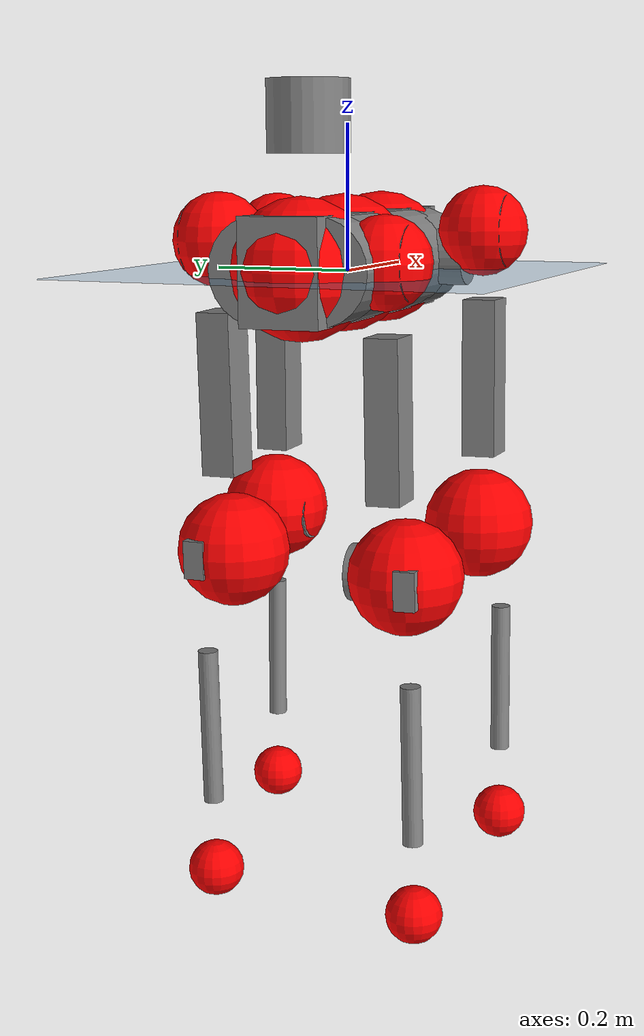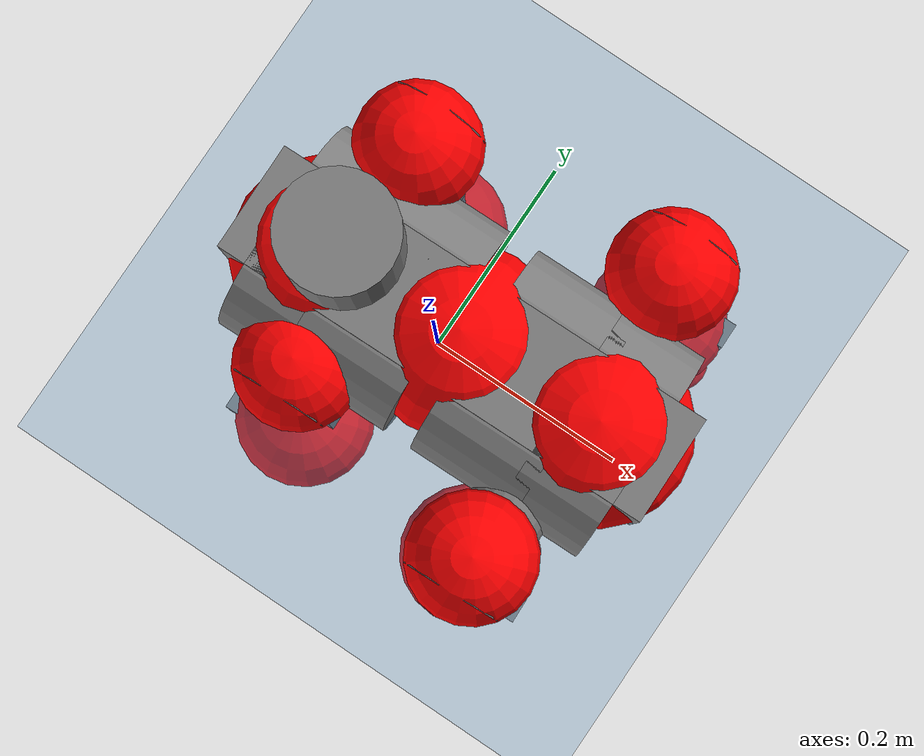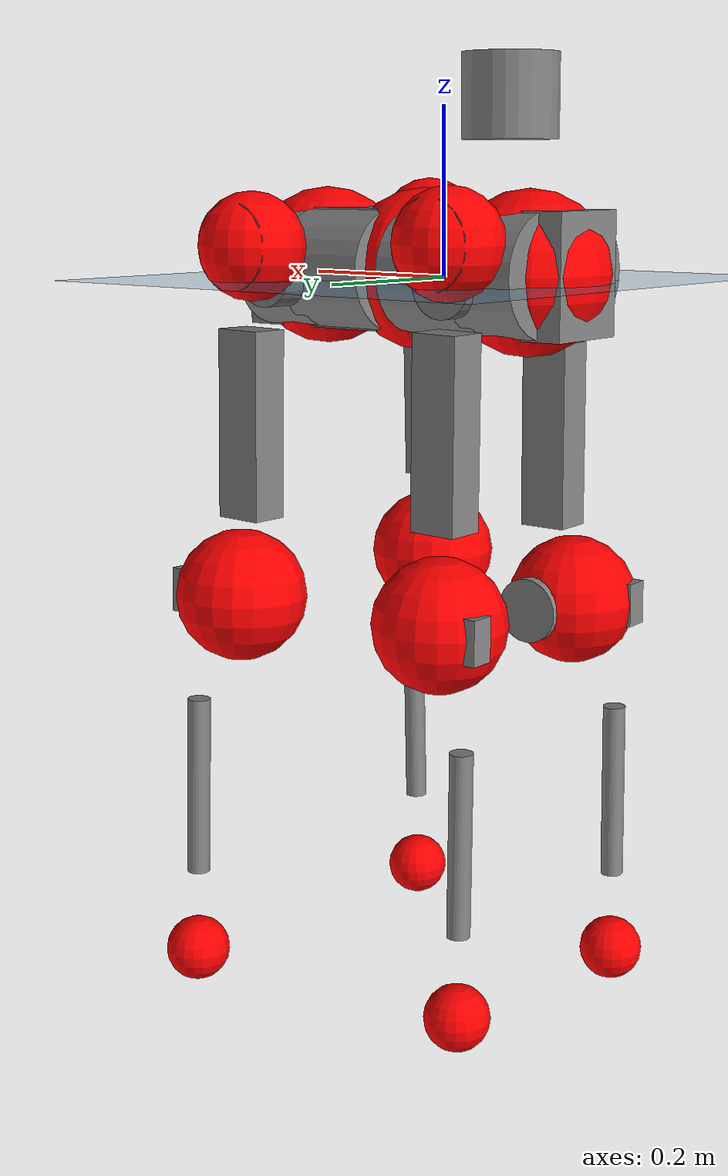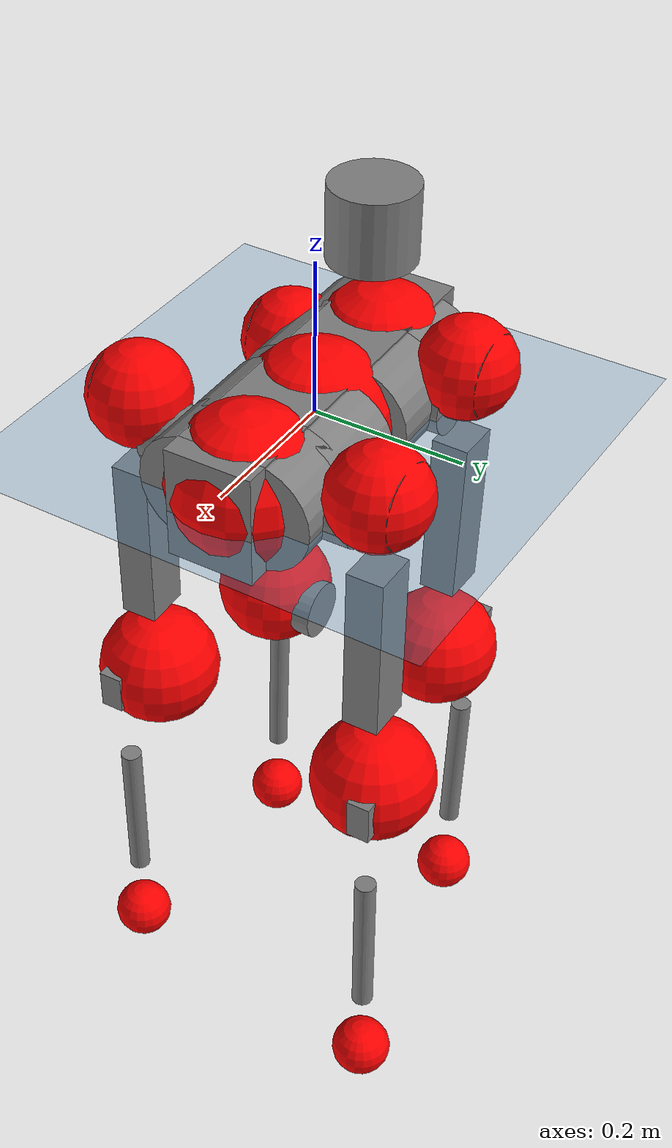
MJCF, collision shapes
<mujoco model="anymal_c">
  <compiler angle="radian" assetdir="assets" balanceinertia="true" inertiafromgeom="false"/>

  <option timestep="0.005" density="1.2" viscosity="2e-05"/>

  <size nkey="1"/>

  <visual>
    <quality shadowsize="8192"/>
    <map shadowclip="0.5"/>
  </visual>

  <default>
    <default class="/">
      <material specular="0" shininess="0.25"/>
      <geom contype="0" conaffinity="0" group="1" solref="-1000 -80"/>
      <site size="0.01 0.005 0.005" group="5"/>
      <general forcelimited="true" forcerange="-80 80" biastype="affine" gainprm="80" biasprm="0 -80 -2"/>
      <default class="anymal_c">
        <joint armature="0.01" damping="0.01" frictionloss="0.1"/>
        <default class="visual">
          <geom type="mesh" group="2"/>
          <default class="visual_zflip"/>
        </default>
        <default class="collision">
          <geom type="cylinder" group="3"/>
          <default class="foot">
            <geom size="0.03 0 0" type="sphere" condim="6" priority="1" friction="0.8 0.02 0.01" solimp="0.015 1 0.03"/>
          </default>
        </default>
      </default>
      <default class="reward_collision_sphere">
        <geom group="5" rgba="1 0 0 1"/>
      </default>
    </default>
  </default>

  <asset>
    <texture type="skybox" colorspace="auto" name="//unnamed_texture_0" builtin="gradient" rgb1="0.95 0.95 0.95" rgb2="0.95 0.95 0.95" width="100" height="600"/>
    <texture type="2d" colorspace="auto" name="texplane" builtin="checker" rgb1="0.345 0.575 0.748" rgb2="0.345 0.575 0.748" markrgb="1 1 1" width="512" height="512"/>
    <texture type="2d" colorspace="linear" name="base" file="base.png"/>
    <texture type="2d" colorspace="linear" name="top_shell" file="top_shell.png"/>
    <texture type="2d" colorspace="linear" name="bottom_shell" file="bottom_shell.png"/>
    <texture type="2d" colorspace="linear" name="remote" file="remote.png"/>
    <texture type="2d" colorspace="linear" name="hatch" file="hatch.png"/>
    <texture type="2d" colorspace="linear" name="handle" file="handle.png"/>
    <texture type="2d" colorspace="linear" name="face" file="face.png"/>
    <texture type="2d" colorspace="linear" name="battery" file="battery.png"/>
    <texture type="2d" colorspace="linear" name="lidar_cage" file="lidar_cage.png"/>
    <texture type="2d" colorspace="linear" name="depth_camera" file="depth_camera.png"/>
    <texture type="2d" colorspace="linear" name="wide_angle_camera" file="wide_angle_camera.png"/>
    <texture type="2d" colorspace="linear" name="lidar" file="lidar.png"/>
    <texture type="2d" colorspace="linear" name="drive" file="drive.png"/>
    <texture type="2d" colorspace="linear" name="hip_l" file="hip_l.png"/>
    <texture type="2d" colorspace="linear" name="shank_l" file="shank_l.png"/>
    <texture type="2d" colorspace="linear" name="foot" file="foot.png"/>
    <texture type="2d" colorspace="linear" name="thigh" file="thigh.png"/>
    <texture type="2d" colorspace="linear" name="shank_r" file="shank_r.png"/>
    <texture type="2d" colorspace="linear" name="hip_r" file="hip_r.png"/>
    <material name="MatPlane" class="/" texture="texplane" texuniform="true" texrepeat="2 2" specular="0.9" shininess="0.5"/>
    <material name="black_plastic" class="/" rgba="0.007 0.007 0.007 1"/>
    <material name="green" class="/" rgba="0.052 0.178 0.033 1"/>
    <material name="red" class="/" rgba="0.178 0.006 0.005 1"/>
    <material name="yellow" class="/" rgba="0.178 0.119 0.006 1"/>
    <material name="lwl" class="/" rgba="0.8 0.8 0.8 1"/>
    <material name="base" class="/" texture="base"/>
    <material name="top_shell" class="/" texture="top_shell"/>
    <material name="bottom_shell" class="/" texture="bottom_shell"/>
    <material name="hip_l" class="/" texture="hip_l"/>
    <material name="thigh" class="/" texture="thigh"/>
    <material name="shank_l" class="/" texture="shank_l"/>
    <material name="foot" class="/" texture="foot"/>
    <material name="hip_r" class="/" texture="hip_r"/>
    <material name="shank" class="/" texture="shank_r"/>
    <material name="hatch" class="/" texture="hatch"/>
    <material name="remote" class="/" texture="remote"/>
    <material name="handle" class="/" texture="handle"/>
    <material name="face" class="/" texture="face"/>
    <material name="depth_camera" class="/" texture="depth_camera"/>
    <material name="wide_angle_camera" class="/" texture="wide_angle_camera"/>
    <material name="battery" class="/" texture="battery"/>
    <material name="lidar_cage" class="/" texture="lidar_cage"/>
    <material name="lidar" class="/" texture="lidar"/>
    <material name="drive" class="/" texture="drive"/>
    <mesh name="base_0" class="/" file="base_0.obj"/>
    <mesh name="base_1" class="/" file="base_1.obj"/>
    <mesh name="base_2" class="/" file="base_2.obj"/>
    <mesh name="base_3" class="/" file="base_3.obj"/>
    <mesh name="base_4" class="/" file="base_4.obj"/>
    <mesh name="base_5" class="/" file="base_5.obj"/>
    <mesh name="top_shell" class="/" file="top_shell.obj"/>
    <mesh name="bottom_shell" class="/" file="bottom_shell.obj"/>
    <mesh name="remote" class="/" file="remote.obj"/>
    <mesh name="handle" class="/" file="handle.obj"/>
    <mesh name="face" class="/" file="face.obj"/>
    <mesh name="wide_angle_camera" class="/" file="wide_angle_camera.obj"/>
    <mesh name="depth_camera" class="/" file="depth_camera.obj"/>
    <mesh name="battery" class="/" file="battery.obj"/>
    <mesh name="lidar_cage" class="/" file="lidar_cage.obj"/>
    <mesh name="lidar" class="/" file="lidar.obj"/>
    <mesh name="drive" class="/" file="drive.obj"/>
    <mesh name="hip_l" class="/" file="hip_l.obj"/>
    <mesh name="thigh" class="/" file="thigh.obj"/>
    <mesh name="shank_l" class="/" file="shank_l.obj"/>
    <mesh name="foot" class="/" file="foot.obj"/>
    <mesh name="hip_r" class="/" file="hip_r.obj"/>
    <mesh name="hatch" class="/" file="hatch.obj"/>
    <mesh name="shank_r" class="/" file="shank_r.obj"/>
  </asset>

  <worldbody>
    <geom name="floor" class="/" size="100 100 0.125" type="plane" group="0" material="MatPlane"/>
    <light name="toplight_shadow" class="/" pos="0 0 5" dir="0.0990148 0.0990148 -0.990148" type="directional" ambient="0.04 0.04 0.04" diffuse="0.55 0.55 0.55" specular="0.12 0.12 0.12"/>
    <light name="toplight_fill" class="/" pos="0 0 5" dir="0.0990148 0.0990148 -0.990148" type="directional" castshadow="false" ambient="0.04 0.04 0.04" diffuse="0.3 0.3 0.3" specular="0.08 0.08 0.08"/>
    <body name="trunk" childclass="anymal_c" pos="0.0178856 0.0136846 0.00976025" quat="0.999971 -0.00206042 -0.000549801 0.00731962">
      <inertial pos="0.0194169 0.00494771 0.0786842" quat="0.479183 0.523217 0.471711 0.523561" mass="9.10854" diaginertia="0.00319543 0.0395815 1.28704"/>
      <joint name="//unnamed_joint_0" type="free" armature="0" damping="0" frictionloss="0"/>
      <geom name="//unnamed_geom_1" class="visual" material="green" mesh="base_0"/>
      <geom name="//unnamed_geom_2" class="visual" material="yellow" mesh="base_1"/>
      <geom name="//unnamed_geom_3" class="visual" material="red" mesh="base_2"/>
      <geom name="//unnamed_geom_4" class="visual" material="black_plastic" mesh="base_3"/>
      <geom name="//unnamed_geom_5" class="visual" material="lwl" mesh="base_4"/>
      <geom name="//unnamed_geom_6" class="visual" material="base" mesh="base_5"/>
      <geom name="trunk_1" class="collision" size="0.231804 0.0559527 0.0719392" type="box"/>
      <geom name="trunk_2" class="collision" size="0.0719392 0.0579511" pos="0.0733059 0.0405228 0" quat="0.707107 0 0.707107 0"/>
      <geom name="trunk_3" class="collision" size="0.0719392 0.0579511" pos="-0.0733059 0.0405228 0" quat="0.707107 0 0.707107 0"/>
      <geom name="trunk_4" class="collision" size="0.0719392 0.0579511" pos="0.0733059 -0.0405228 0" quat="0.707107 0 0.707107 0"/>
      <geom name="trunk_5" class="collision" size="0.0719392 0.0579511" pos="-0.0733059 -0.0405228 0" quat="0.707107 0 0.707107 0"/>
      <geom name="//unnamed_geom_12" class="visual" material="top_shell" mesh="top_shell"/>
      <geom name="//unnamed_geom_13" class="visual" material="bottom_shell" mesh="bottom_shell"/>
      <geom name="//unnamed_geom_14" class="visual" material="remote" mesh="remote"/>
      <geom name="//unnamed_geom_15" class="visual" material="handle" mesh="handle"/>
      <geom name="//unnamed_geom_16" class="visual" pos="0.139703 0 0" quat="1 0 0 0" material="face" mesh="face"/>
      <geom name="trunk_6" class="collision" size="0.0439629 0.0559527 0.0719392" pos="0.15824 0 0" type="box"/>
      <geom name="//unnamed_geom_18" class="collision" size="0.0719392 0.0439629" pos="0.15824 0.0405228 0" quat="0.707107 0 0.707107 0"/>
      <geom name="//unnamed_geom_19" class="collision" size="0.0719392 0.0439629" pos="0.15824 -0.0405228 0" quat="0.707107 0 0.707107 0"/>
      <geom name="//unnamed_geom_20" class="visual" pos="0.155641 0 -0.0519775" quat="0.965926 0 0.258819 0" material="depth_camera" mesh="depth_camera"/>
      <geom name="//unnamed_geom_21" class="visual" pos="0.172901 0 0.0221861" material="wide_angle_camera" mesh="wide_angle_camera"/>
      <geom name="//unnamed_geom_22" class="visual_zflip" pos="-0.139703 0 0" quat="0 0 0 1" material="face" mesh="face"/>
      <geom name="trunk_7" class="collision" size="0.0439629 0.0559527 0.0719392" pos="-0.15824 0 0" quat="0 0 0 1" type="box"/>
      <geom name="//unnamed_geom_24" class="collision" size="0.0719392 0.0439629" pos="-0.15824 -0.0405228 0" quat="0 -0.707107 0 0.707107"/>
      <geom name="//unnamed_geom_25" class="collision" size="0.0719392 0.0439629" pos="-0.15824 0.0405228 0" quat="0 -0.707107 0 0.707107"/>
      <geom name="//unnamed_geom_26" class="visual" pos="-0.155641 0 -0.0519775" quat="0 -0.258819 0 0.965926" material="depth_camera" mesh="depth_camera"/>
      <geom name="//unnamed_geom_27" class="visual_zflip" pos="-0.172901 0 0.0221861" quat="0 0 0 1" material="wide_angle_camera" mesh="wide_angle_camera"/>
      <geom name="//unnamed_geom_28" class="visual" material="battery" mesh="battery"/>
      <geom name="//unnamed_geom_29" class="visual" pos="0 0.0474837 0.0343512" quat="0.683013 -0.183013 0.183013 0.683013" material="depth_camera" mesh="depth_camera"/>
      <geom name="//unnamed_geom_30" class="visual" pos="0 -0.0474837 0.0343512" quat="0.683013 0.183013 0.183013 -0.683013" material="depth_camera" mesh="depth_camera"/>
      <geom name="//unnamed_geom_31" class="visual" pos="-0.122682 0 0.10893" quat="1 0 0 0" material="lidar_cage" mesh="lidar_cage"/>
      <geom name="trunk_8" class="collision" size="0.0559527 0.0479595" pos="-0.122682 0 0.197852"/>
      <geom name="//unnamed_geom_33" class="visual" pos="-0.122682 9.50196e-05 0.210746" quat="0.707107 0 0 -0.707107" material="lidar" mesh="lidar"/>
      <geom name="//unnamed_geom_34" class="visual" pos="0.101078 0.0605261 -1.55793e-08" quat="0.258819 0.965926 0 0" material="drive" mesh="drive"/>
      <geom name="//unnamed_geom_35" class="visual" pos="0.101078 -0.0605261 1.55793e-08" quat="0.258819 -0.965926 0 0" material="drive" mesh="drive"/>
      <geom name="//unnamed_geom_36" class="visual" pos="-0.101078 0.0605261 1.55793e-08" quat="0 0 0.965926 -0.258819" material="drive" mesh="drive"/>
      <geom name="//unnamed_geom_37" class="visual" pos="-0.101078 -0.0605261 -1.55793e-08" quat="0 0 -0.965926 -0.258819" material="drive" mesh="drive"/>
      <geom name="//unnamed_geom_38" class="visual" pos="0.0390965 0 0.108189" quat="1 0 0 0" material="hatch" mesh="hatch"/>
      <geom name="//unnamed_geom_39" class="reward_collision_sphere" size="0.095919"/>
      <geom name="//unnamed_geom_40" class="reward_collision_sphere" size="0.095919" pos="0.151667 0 0"/>
      <geom name="//unnamed_geom_41" class="reward_collision_sphere" size="0.095919" pos="-0.151667 0 0"/>
      <site name="imu" pos="0.0649168 -0.0421352 0.109367" size="0.00799325"/>
      <camera name="track" pos="0 -1.15779 0" quat="0.707107 0.707107 0 0" mode="trackcom"/>
      <camera name="ego_camera" pos="0.151667 0 -0.0592816" quat="-0.5 -0.5 0.5 0.5"/>
      <body name="LF_HIP" pos="0.113604 0.0730108 -0.00984979" quat="0.255282 0.966832 -0.0023144 0.00782462">
        <inertial pos="0.0379192 0.00262766 -0.000701025" quat="-0.1404 0.704551 -0.118637 0.685435" mass="1.21613" diaginertia="2.19338e-05 0.000309874 0.0160084"/>
        <joint name="LF_HAA" pos="0 0 0" axis="0.99949 -0.0102272 0.0302386" stiffness="0.0454173" range="-0.627107 0.811525" armature="0.00215934" damping="0.074039" frictionloss="0.0393358"/>
        <geom name="//unnamed_geom_42" class="visual" pos="0 -0.00091646 0.000150528" quat="0.258819 -0.965926 0 0" material="hip_l" mesh="hip_l"/>
        <geom name="//unnamed_geom_43" class="visual" pos="0.0201886 -0.0279681 -0.0228275" quat="0.183013 -0.683013 0.683013 0.183013" material="drive" mesh="drive"/>
        <geom name="//unnamed_geom_44" class="collision" size="0.0399662 0.0559527" pos="0.0201886 -0.00692349 -0.0102335" quat="-0.353553 -0.612372 0.612372 -0.353553"/>
        <body name="LF_THIGH" pos="0.0194671 -0.0483086 -0.0716355" quat="0.184001 -0.683823 0.681843 0.183357">
          <inertial pos="-0.0074505 -0.00520163 -0.380735" quat="0.993504 0.00657182 -0.0919655 0.0667038" mass="1.66466" diaginertia="0.000135432 0.00168898 0.032415"/>
          <joint name="LF_HFE" pos="0 0 0" axis="0.998553 -0.0535246 -0.00527673" range="-2.83389 2.84774" armature="0.00254461" damping="0.0979551" frictionloss="0.0355564"/>
          <geom name="//unnamed_geom_45" class="visual" pos="-0.00481203 -7.58263e-06 0" quat="0.707107 0 0 -0.707107" material="thigh" mesh="thigh"/>
          <geom name="//unnamed_geom_46" class="collision" size="0.0519561 0.031973" pos="0.0134815 0 0" quat="0.5 0.5 -0.5 -0.5"/>
          <geom name="//unnamed_geom_47" class="collision" size="0.0299747 0.0239797 0.112956" pos="0.0101112 0 -0.209433" quat="0.707107 0 0 -0.707107" type="box"/>
          <geom name="//unnamed_geom_48" class="visual" pos="0.033805 0 -0.422381" quat="1 0 0 0" material="drive" mesh="drive"/>
          <geom name="//unnamed_geom_49" class="collision" size="0.0399662 0.0559527" pos="0.0102123 0 -0.422381" quat="0.707107 0 0.707107 0"/>
          <geom name="//unnamed_geom_50" class="reward_collision_sphere" size="0.063946" pos="0.00842597 0 0"/>
          <body name="LF_SHANK" pos="0.036667 -0.00728456 -0.417635" quat="0.999979 -0.00121441 -0.00631768 -0.0010701">
            <inertial pos="-0.010418 -0.0469044 -0.105195" quat="0.995778 -0.0544925 0.0367939 -0.0640476" mass="0.266543" diaginertia="4.85986e-05 0.000510743 0.00922497"/>
            <joint name="LF_KFE" pos="0 0 0" axis="0.999307 -0.0366918 0.00625744" range="-3.0401 3.45404" armature="0.0132637" damping="0.00354297" frictionloss="0.104054"/>
            <geom name="//unnamed_geom_51" class="visual" pos="-0.0015691 -0.0083665 0" quat="0.707107 0 0 -0.707107" material="shank_l" mesh="shank_l"/>
            <geom name="LF_kfe_act" class="collision" size="0.0479595 0.0159865" pos="0.00674077 0 0" quat="0.5 0.5 -0.5 -0.5"/>
            <geom name="//unnamed_geom_53" class="collision" size="0.0459604 0.0269772 0.0151872" pos="0.00674077 -0.033286 0" quat="0.5 0.5 -0.5 -0.5" type="box"/>
            <geom name="//unnamed_geom_54" class="visual" pos="0.00439873 -0.0536102 -0.500885" quat="0.382683 0 0 -0.92388" material="foot" mesh="foot"/>
            <geom name="LF_calf" class="collision" size="0.0139882 0.112906" pos="0.00439835 -0.050914 -0.250442" quat="0.707107 0 0 -0.707107"/>
            <geom name="LF_foot" class="foot" size="0.0170828" pos="0.00439835 -0.050914 -0.467539" quat="0.707107 0 0 -0.707107"/>
            <geom name="//unnamed_geom_57" class="reward_collision_sphere" size="0.0799325" pos="-0.0168519 0 0"/>
            <geom name="//unnamed_geom_58" class="reward_collision_sphere" size="0.0399662" pos="0.00439835 -0.050914 -0.467539"/>
            <site name="LF_foot" class="foot" pos="0.00439835 -0.050914 -0.467539" quat="0.707107 0 0 -0.707107" size="0.00799325"/>
          </body>
        </body>
      </body>
      <body name="RF_HIP" pos="0.104375 -0.0760293 -0.00230329" quat="0.255017 -0.96693 -0.00173177 0.00319846">
        <inertial pos="0.00420163 0.000723959 -0.0125838" quat="0.150455 0.667162 0.133837 0.717179" mass="0.884857" diaginertia="2.28141e-05 0.00028974 0.0226496"/>
        <joint name="RF_HAA" pos="0 0 0" axis="0.999926 -0.00409606 0.011487" stiffness="0.0355526" range="-0.72978 0.651793" armature="0.0156069" damping="0.0261748" frictionloss="0.00764977"/>
        <geom name="//unnamed_geom_59" class="visual" pos="0 0.000916453 0.000150527" quat="0.258819 0.965926 0 0" material="hip_r" mesh="hip_r"/>
        <geom name="//unnamed_geom_60" class="visual" pos="0.0201886 0.0279681 -0.0228275" quat="0.183013 0.683013 0.683013 -0.183013" material="drive" mesh="drive"/>
        <geom name="//unnamed_geom_61" class="collision" size="0.0399662 0.0559527" pos="0.0201886 0.00692349 -0.0102335" quat="-0.353553 0.612372 0.612372 0.353553"/>
        <body name="RF_THIGH" pos="0.0157828 0.0502834 -0.0785795" quat="0.187405 0.687659 0.67801 -0.179742">
          <inertial pos="0.0243642 0.0186362 -0.355805" quat="0.990255 -0.0263805 -0.0812106 0.110022" mass="2.16716" diaginertia="0.000141746 0.00245231 0.0397536"/>
          <joint name="RF_HFE" pos="0 0 0" axis="0.999464 -0.0251763 0.0209343" stiffness="0.025665" range="-2.96948 3.33048" armature="0.00878462" damping="0.0153774" frictionloss="0.0390843"/>
          <geom name="//unnamed_geom_62" class="visual" pos="-0.00481203 -7.58263e-06 0" quat="0.707107 0 0 -0.707107" material="thigh" mesh="thigh"/>
          <geom name="//unnamed_geom_63" class="collision" size="0.0519561 0.031973" pos="0.0134815 0 0" quat="0.5 0.5 0.5 0.5"/>
          <geom name="//unnamed_geom_64" class="collision" size="0.0299747 0.0239797 0.112956" pos="0.0101112 0 -0.209433" quat="0.707107 0 0 0.707107" type="box"/>
          <geom name="//unnamed_geom_65" class="visual" pos="0.033805 0 -0.422381" quat="1 0 0 0" material="drive" mesh="drive"/>
          <geom name="//unnamed_geom_66" class="collision" size="0.0399662 0.0559527" pos="0.0102123 0 -0.422381" quat="0.707107 0 0.707107 0"/>
          <geom name="//unnamed_geom_67" class="reward_collision_sphere" size="0.063946" pos="0.00842597 0 0"/>
          <body name="RF_SHANK" pos="0.0205633 0.000503898 -0.426197" quat="1 -0.000113177 0.000118765 0.000747984">
            <inertial pos="-0.00961161 0.0372584 -0.111303" quat="0.994569 0.10262 -0.0170645 0.00334218" mass="0.218021" diaginertia="2.85729e-05 0.000569353 0.00611437"/>
            <joint name="RF_KFE" pos="0 0 0" axis="0.997167 0.0751567 0.0029635" stiffness="0.0612738" range="-3.17906 3.25089" armature="0.00622243" damping="0" frictionloss="0.0485816"/>
            <geom name="//unnamed_geom_68" class="visual" pos="-0.00156909 0.00836649 0" quat="0.707107 0 0 0.707107" material="shank" mesh="shank_r"/>
            <geom name="RF_kfe_act" class="collision" size="0.0479595 0.0159865" pos="0.00674077 0 0" quat="0.5 0.5 0.5 0.5"/>
            <geom name="//unnamed_geom_70" class="collision" size="0.0459604 0.0269772 0.0151872" pos="0.00674077 0.033286 0" quat="0.5 0.5 0.5 0.5" type="box"/>
            <geom name="//unnamed_geom_71" class="visual" pos="0.00439797 0.0536102 -0.500885" quat="0.382683 0 0 0.92388" material="foot" mesh="foot"/>
            <geom name="RF_calf" class="collision" size="0.0139882 0.112906" pos="0.00439835 0.050914 -0.250442" quat="0.707107 0 0 0.707107"/>
            <geom name="RF_foot" class="foot" size="0.0238071" pos="0.00439835 0.050914 -0.467539" quat="0.707107 0 0 0.707107"/>
            <geom name="//unnamed_geom_74" class="reward_collision_sphere" size="0.0799325" pos="-0.0168519 0 0"/>
            <geom name="//unnamed_geom_75" class="reward_collision_sphere" size="0.0399662" pos="0.00439835 0.050914 -0.467539"/>
            <site name="RF_foot" class="foot" pos="0.00439835 0.050914 -0.467539" quat="0.707107 0 0 0.707107" size="0.00799325"/>
          </body>
        </body>
      </body>
      <body name="LH_HIP" pos="-0.094464 0.0535195 -0.0121112" quat="0.00917232 0.00301232 0.965414 -0.260544">
        <inertial pos="0.00120673 0.016049 -0.0175665" quat="0.138547 0.678228 0.126274 0.710539" mass="1.21812" diaginertia="2.38519e-05 0.00024901 0.0244554"/>
        <joint name="LH_HAA" pos="0 0 0" axis="0.999326 0.0354692 -0.00943252" range="-0.354865 0.602498" armature="0.00760996" damping="0.00805952" frictionloss="0.0413207"/>
        <geom name="//unnamed_geom_76" class="visual" pos="0 0.000916453 0.000150527" quat="-0.258819 -0.965926 0 0" material="hip_r" mesh="hip_r"/>
        <geom name="//unnamed_geom_77" class="visual" pos="0.0201886 0.0279681 -0.0228275" quat="0.183013 0.683013 0.683013 -0.183013" material="drive" mesh="drive"/>
        <geom name="//unnamed_geom_78" class="collision" size="0.0399662 0.0559527" pos="0.0201886 0.00692349 -0.0102335" quat="-0.353553 0.612372 0.612372 0.353553"/>
        <body name="LH_THIGH" pos="0.0374624 0.0317731 -0.0762223" quat="0.179353 0.677978 0.689095 -0.182554">
          <inertial pos="0.0139738 0.00680825 -0.357366" quat="0.996835 -0.0409382 -0.0659102 0.0172942" mass="1.89125" diaginertia="0.000118867 0.00232341 0.0267807"/>
          <joint name="LH_HFE" pos="0 0 0" axis="0.999955 -0.00397553 -0.00856819" range="-3.01834 3.20194" armature="0.0126317" damping="0.098442" frictionloss="0.116804"/>
          <geom name="//unnamed_geom_79" class="visual" pos="-0.00481203 -7.58263e-06 0" quat="0.707107 0 0 -0.707107" material="thigh" mesh="thigh"/>
          <geom name="//unnamed_geom_80" class="collision" size="0.0519561 0.031973" pos="0.0134815 0 0" quat="0.5 0.5 -0.5 -0.5"/>
          <geom name="//unnamed_geom_81" class="collision" size="0.0299747 0.0239797 0.112956" pos="0.0101112 0 -0.209433" quat="0.707107 0 0 -0.707107" type="box"/>
          <geom name="//unnamed_geom_82" class="visual" pos="0.033805 0 -0.422381" quat="1 0 0 0" material="drive" mesh="drive"/>
          <geom name="//unnamed_geom_83" class="collision" size="0.0399662 0.0559527" pos="0.0102123 0 -0.422381" quat="0.707107 0 0.707107 0"/>
          <geom name="//unnamed_geom_84" class="reward_collision_sphere" size="0.063946" pos="0.00842597 0 0"/>
          <body name="LH_SHANK" pos="0.0250007 -0.00641102 -0.433377" quat="0.999999 -0.000741851 -0.0011817 0.000946417">
            <inertial pos="0.0027629 0.0376485 -0.131615" quat="0.992712 0.117083 0.0080115 0.027385" mass="0.302438" diaginertia="4.39883e-05 0.0005507 0.00816118"/>
            <joint name="LH_KFE" pos="0 0 0" axis="0.999922 -0.00024164 0.012491" stiffness="0.0227381" range="-2.98209 3.14932" armature="0.0129249" damping="0.0851321" frictionloss="0.0947192"/>
            <geom name="//unnamed_geom_85" class="visual" pos="-0.00156909 0.00836649 0" quat="-0.707107 0 0 -0.707107" material="shank" mesh="shank_r"/>
            <geom name="LH_kfe_act" class="collision" size="0.0479595 0.0159865" pos="0.00674077 0 0" quat="0.5 0.5 -0.5 -0.5"/>
            <geom name="//unnamed_geom_87" class="collision" size="0.0459604 0.0269772 0.0151872" pos="0.00674077 0.033286 0" quat="0.5 0.5 -0.5 -0.5" type="box"/>
            <geom name="//unnamed_geom_88" class="visual" pos="0.00439797 0.0536102 -0.500885" quat="-0.382683 0 0 -0.92388" material="foot" mesh="foot"/>
            <geom name="LH_calf" class="collision" size="0.0139882 0.112906" pos="0.00439835 0.050914 -0.250442" quat="0.707107 0 0 -0.707107"/>
            <geom name="LH_foot" class="foot" size="0.0117491" pos="0.00439835 0.050914 -0.467539" quat="0.707107 0 0 -0.707107"/>
            <geom name="//unnamed_geom_91" class="reward_collision_sphere" size="0.0799325" pos="-0.0168519 0 0"/>
            <geom name="//unnamed_geom_92" class="reward_collision_sphere" size="0.0399662" pos="0.00439835 0.050914 -0.467539"/>
            <site name="LH_foot" class="foot" pos="0.00439835 0.050914 -0.467539" quat="0.707107 0 0 -0.707107" size="0.00799325"/>
          </body>
        </body>
      </body>
      <body name="RH_HIP" pos="-0.0996252 -0.0427279 -0.0149592" quat="-0.00223963 0.00365385 -0.967317 -0.253533">
        <inertial pos="0.0189043 -0.0238373 -0.0130678" quat="-0.0446095 0.708484 -0.14109 0.690039" mass="1.46065" diaginertia="2.25479e-05 0.000280323 0.0275802"/>
        <joint name="RH_HAA" pos="0 0 0" axis="0.999446 -0.0204819 -0.0262171" range="-0.850855 0.437522" armature="4.60576e-05" damping="0" frictionloss="0.144504"/>
        <geom name="//unnamed_geom_93" class="visual" pos="0 -0.00091646 0.000150528" quat="-0.258819 0.965926 0 0" material="hip_l" mesh="hip_l"/>
        <geom name="//unnamed_geom_94" class="visual" pos="0.0201886 -0.0279681 -0.0228275" quat="-0.183013 0.683013 -0.683013 -0.183013" material="drive" mesh="drive"/>
        <geom name="//unnamed_geom_95" class="collision" size="0.0399662 0.0559527" pos="0.0201886 -0.00692349 -0.0102335" quat="0.353553 0.612372 -0.612372 0.353553"/>
        <body name="RH_THIGH" pos="0.0167952 -0.035291 -0.0467163" quat="-0.181841 0.679479 -0.686471 -0.184389">
          <inertial pos="0.0118355 0.0109911 -0.368385" quat="0.994335 -0.00812223 -0.0691092 0.0803526" mass="1.99467" diaginertia="0.000165769 0.00224749 0.0405261"/>
          <joint name="RH_HFE" pos="0 0 0" axis="0.99938 -0.00394688 -0.0349884" stiffness="0.0671318" range="-2.80203 2.89004" armature="0.00377944" damping="0.0400881" frictionloss="0.112053"/>
          <geom name="//unnamed_geom_96" class="visual" pos="-0.00481203 -7.58263e-06 0" quat="0.707107 0 0 -0.707107" material="thigh" mesh="thigh"/>
          <geom name="//unnamed_geom_97" class="collision" size="0.0519561 0.031973" pos="0.0134815 0 0" quat="0.5 0.5 0.5 0.5"/>
          <geom name="//unnamed_geom_98" class="collision" size="0.0299747 0.0239797 0.112956" pos="0.0101112 0 -0.209433" quat="0.707107 0 0 0.707107" type="box"/>
          <geom name="//unnamed_geom_99" class="visual" pos="0.033805 0 -0.422381" quat="1 0 0 0" material="drive" mesh="drive"/>
          <geom name="//unnamed_geom_100" class="collision" size="0.0399662 0.0559527" pos="0.0102123 0 -0.422381" quat="0.707107 0 0.707107 0"/>
          <geom name="//unnamed_geom_101" class="reward_collision_sphere" size="0.063946" pos="0.00842597 0 0"/>
          <body name="RH_SHANK" pos="0.0537971 -0.0142545 -0.420889" quat="0.999994 -0.00112076 -0.00314924 -0.000518788">
            <inertial pos="-0.0173751 -0.0343491 -0.131332" quat="0.989927 -0.134809 -0.0424688 -0.00818899" mass="0.282399" diaginertia="4.63007e-05 0.000867065 0.00820166"/>
            <joint name="RH_KFE" pos="0 0 0" axis="0.999426 -0.0332615 0.00644704" range="-3.42136 2.74972" armature="0.0146329" damping="0" frictionloss="0.0470783"/>
            <geom name="//unnamed_geom_102" class="visual" pos="-0.0015691 -0.0083665 0" quat="0.707107 0 0 -0.707107" material="shank_l" mesh="shank_l"/>
            <geom name="RH_kfe_act" class="collision" size="0.0479595 0.0159865" pos="0.00674077 0 0" quat="0.5 0.5 0.5 0.5"/>
            <geom name="//unnamed_geom_104" class="collision" size="0.0459604 0.0269772 0.0151872" pos="0.00674077 -0.033286 0" quat="0.5 0.5 0.5 0.5" type="box"/>
            <geom name="//unnamed_geom_105" class="visual" pos="0.00439873 -0.0536102 -0.500885" quat="0.382683 0 0 -0.92388" material="foot" mesh="foot"/>
            <geom name="RH_calf" class="collision" size="0.0139882 0.112906" pos="0.00439835 -0.050914 -0.250442" quat="0.707107 0 0 0.707107"/>
            <geom name="RH_foot" class="foot" size="0.0263148" pos="0.00439835 -0.050914 -0.467539" quat="0.707107 0 0 0.707107"/>
            <geom name="//unnamed_geom_108" class="reward_collision_sphere" size="0.0799325" pos="-0.0168519 0 0"/>
            <geom name="//unnamed_geom_109" class="reward_collision_sphere" size="0.0399662" pos="0.00439835 -0.050914 -0.467539"/>
            <site name="RH_foot" class="foot" pos="0.00439835 -0.050914 -0.467539" quat="0.707107 0 0 0.707107" size="0.00799325"/>
          </body>
        </body>
      </body>
    </body>
  </worldbody>

  <contact>
    <pair class="/" geom1="floor" geom2="LF_foot" name="//unnamed_contact_0"/>
    <pair class="/" geom1="floor" geom2="RF_foot" name="//unnamed_contact_1"/>
    <pair class="/" geom1="floor" geom2="LH_foot" name="//unnamed_contact_2"/>
    <pair class="/" geom1="floor" geom2="RH_foot" name="//unnamed_contact_3"/>
  </contact>

  <actuator>
    <general name="LF_HAA" class="/" joint="LF_HAA" forcerange="-74.9775 74.9775" gainprm="63.67" biasprm="0 -63.67 -1.47877"/>
    <general name="LF_HFE" class="/" joint="LF_HFE" forcerange="-91.3703 91.3703" gainprm="63.67" biasprm="0 -63.67 -1.47877"/>
    <general name="LF_KFE" class="/" joint="LF_KFE" forcerange="-62.0492 62.0492" gainprm="63.67" biasprm="0 -63.67 -1.47877"/>
    <general name="RF_HAA" class="/" joint="RF_HAA" forcerange="-18.5771 18.5771" gainprm="63.67" biasprm="0 -63.67 -1.47877"/>
    <general name="RF_HFE" class="/" joint="RF_HFE" forcerange="-67.4875 67.4875" gainprm="63.67" biasprm="0 -63.67 -1.47877"/>
    <general name="RF_KFE" class="/" joint="RF_KFE" forcerange="-98.2551 98.2551" gainprm="63.67" biasprm="0 -63.67 -1.47877"/>
    <general name="LH_HAA" class="/" joint="LH_HAA" forcerange="-77.3765 77.3765" gainprm="63.67" biasprm="0 -63.67 -1.47877"/>
    <general name="LH_HFE" class="/" joint="LH_HFE" forcerange="-77.7077 77.7077" gainprm="63.67" biasprm="0 -63.67 -1.47877"/>
    <general name="LH_KFE" class="/" joint="LH_KFE" forcerange="-53.4859 53.4859" gainprm="63.67" biasprm="0 -63.67 -1.47877"/>
    <general name="RH_HAA" class="/" joint="RH_HAA" forcerange="-50.1885 50.1885" gainprm="63.67" biasprm="0 -63.67 -1.47877"/>
    <general name="RH_HFE" class="/" joint="RH_HFE" forcerange="-84.9433 84.9433" gainprm="63.67" biasprm="0 -63.67 -1.47877"/>
    <general name="RH_KFE" class="/" joint="RH_KFE" forcerange="-23.4469 23.4469" gainprm="63.67" biasprm="0 -63.67 -1.47877"/>
  </actuator>

  <sensor>
    <gyro site="imu" name="imu_angular_velocity"/>
    <velocimeter site="imu" name="imu_linear_velocity"/>
    <framelinvel objtype="site" objname="LF_foot" name="LF_foot_global_linear_velocity"/>
    <framelinvel objtype="site" objname="RF_foot" name="RF_foot_global_linear_velocity"/>
    <framelinvel objtype="site" objname="LH_foot" name="LH_foot_global_linear_velocity"/>
    <framelinvel objtype="site" objname="RH_foot" name="RH_foot_global_linear_velocity"/>
  </sensor>

  <keyframe>
    <key name="home" qpos="0 0 0.55 1 0 0 0 0 0.4 -0.8 0 -0.4 0.8 0 -0.4 0.8 0 0.4 -0.8"/>
  </keyframe>
</mujoco>
